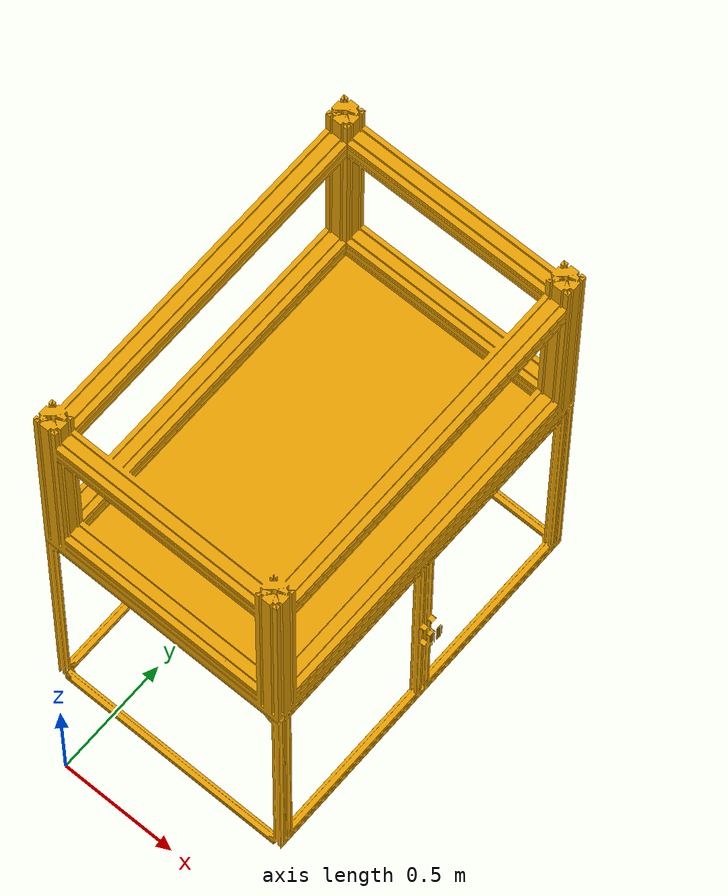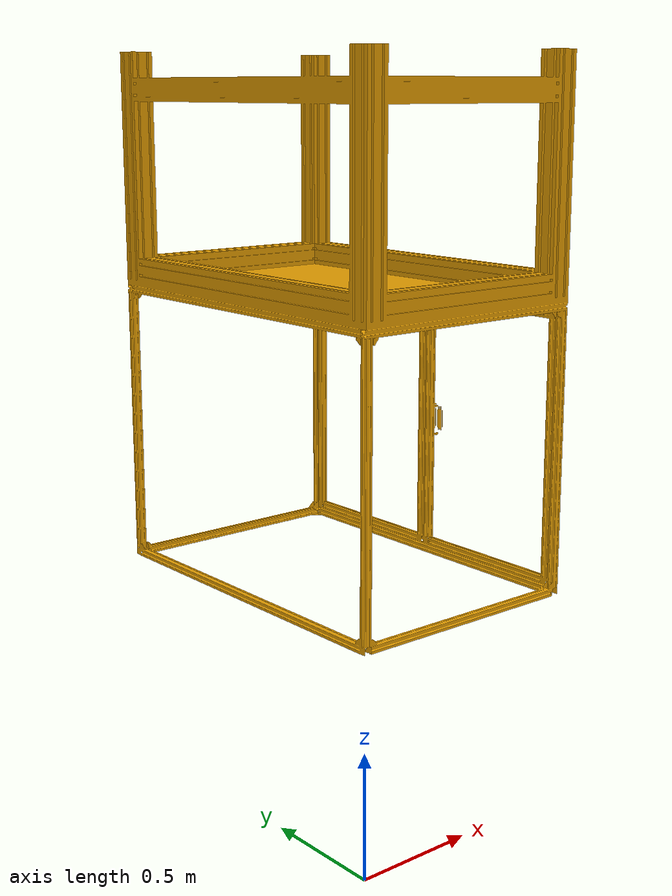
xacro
<?xml version="1.0"?>
<robot xmlns:xacro="http://www.ros.org/wiki/xacro" >

    <xacro:property name="robot_center_offset_length" value="0.42" />
    <xacro:property name="robot_center_offset_width" value="0.02" />
    <xacro:property name="robot_base_height" value="0.99" />
    <xacro:property name="robotcell_length" value="1.44" />
    <xacro:property name="robotcell_width" value="0.94" />
    <xacro:property name="robotcell_height" value="1.16" />
    <xacro:property name="shield_thickness" value="0.03" />

    <link name="robotcell_base_link">
        <visual>
            <origin rpy="0 0 0" xyz="0 0 0" />
            <geometry>
                <mesh filename="package://ur5e_cell_description/meshes/Robotcell.STL" scale="0.001 0.001 0.001"/>
            </geometry>
        </visual>
        <collision>
            <origin rpy="0 0 0" xyz="0 0 0" />
            <geometry>
                <mesh filename="package://ur5e_cell_description/meshes/Robotcell_with_safety.STL" scale="0.001 0.001 0.001" />
            </geometry>
        </collision>
    </link>

</robot>
